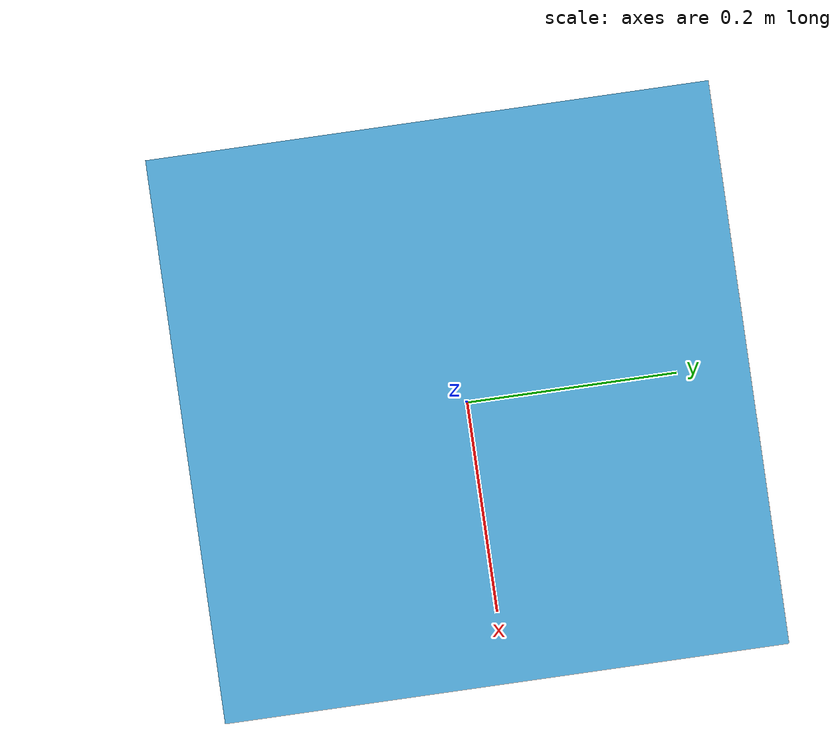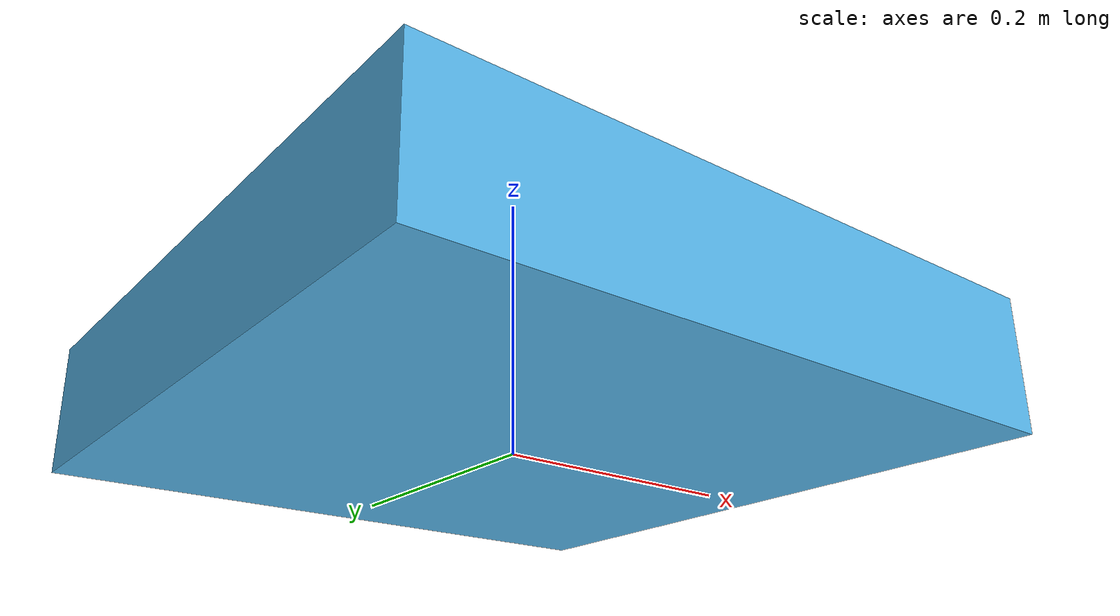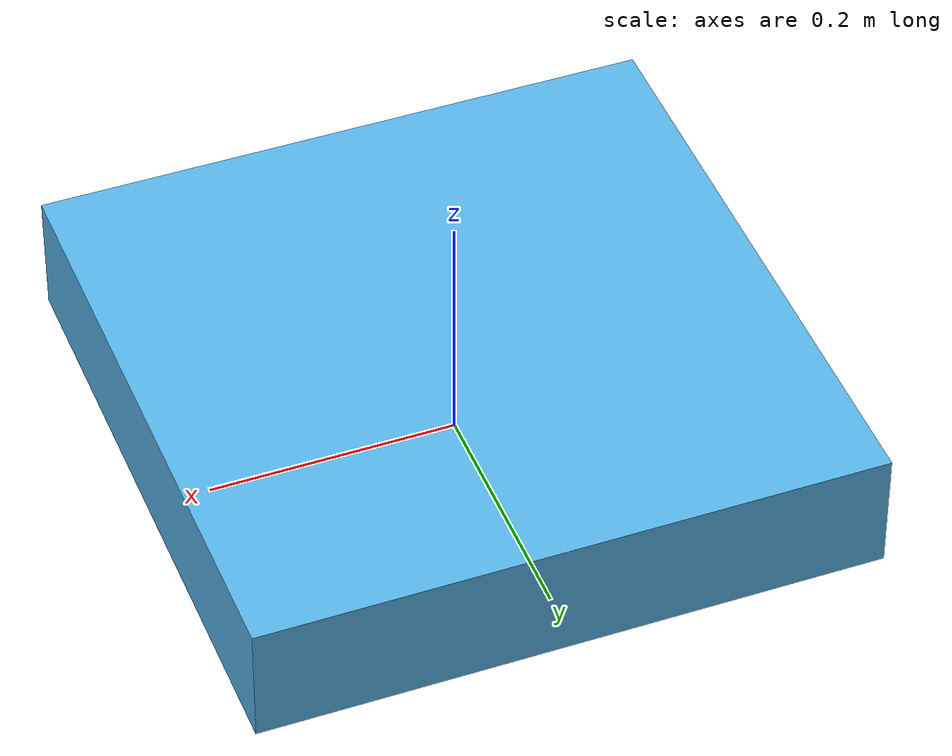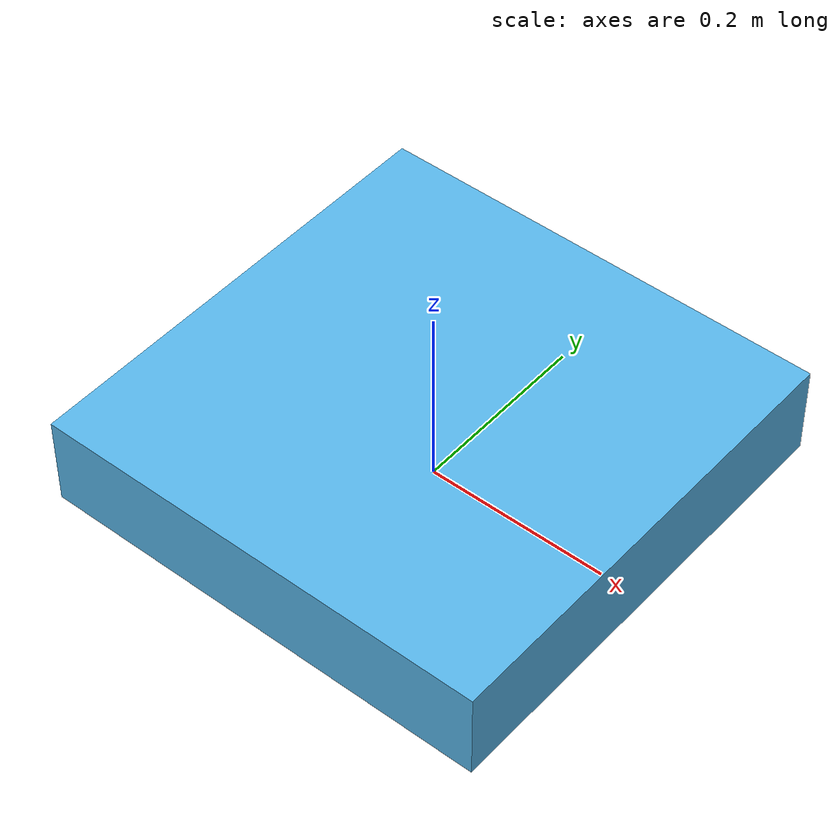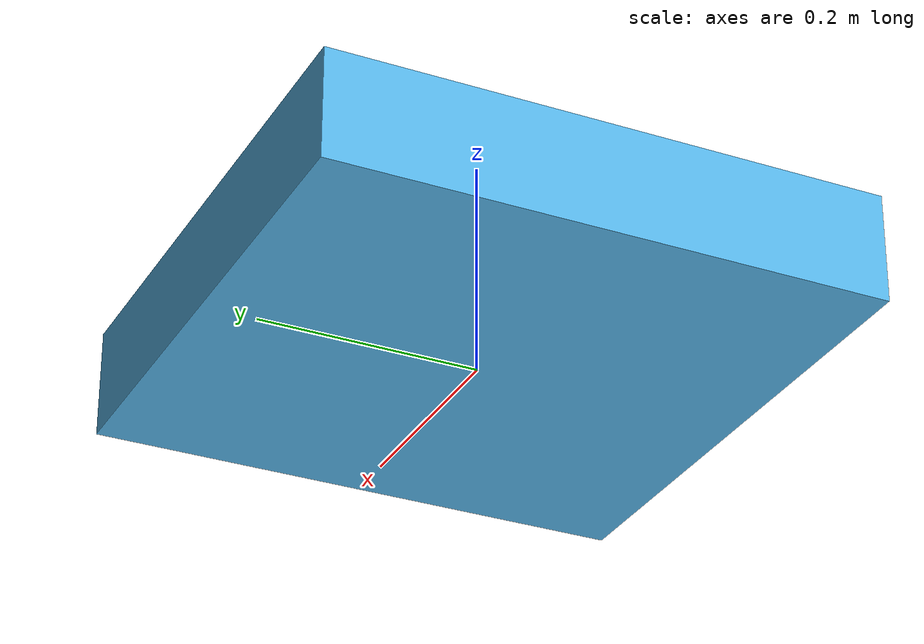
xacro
<?xml version="1.0"?>
<robot xmlns:xacro="http://www.ros.org/wiki/xacro" name="test_sonar">

  <xacro:property name="M_PI" value="3.14159"/>
    <xacro:arg name="robot_namespace" default="/" />

  <!-- Base Footprint -->
  <link name="base_footprint" />

  <!-- Base Link-->
  <joint name="footprint" type="fixed" >
   <parent link="base_footprint" />
    <child link="base_link" />
    <origin xyz="0 0 0.05" rpy="0 0 0" />
  </joint>

  <link name="base_link" >
    <visual>
      <geometry>
        <box size="0.5 0.5 0.1" />
      </geometry>
    </visual>
    <collision>
      <geometry>
        <box size="0.5 0.5 0.1" />
      </geometry>
    </collision>
    <inertial>
      <origin xyz="0 0 0"/>
      <mass value="10"/>
      <inertia ixx="3.0" ixy="0.0" ixz="0.0"
               iyy="3.0" iyz="0.0"
               izz="3.0" />
    </inertial>
  </link>

  <!-- UM6-IMU -->
  <xacro:include filename="$(find gazebo_robot)/sensors/sonar/urdf/sonar.xacro"/>
  <xacro:sonar parent="base_link" pos="m1" xyz="0 0 0 " rpy="0 1.57 0" />

</robot>

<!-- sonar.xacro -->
<robot name="sonar" xmlns:xacro="http://ros.org/wiki/xacro">
  <xacro:property name="sonar_radius" value="0.01"/>
  <xacro:property name="sonar_height" value="0.01"/>

  <xacro:macro name="sonar" params="parent pos xyz rpy">

    <link name="${pos}_sonar">
      <visual>
        <origin xyz="0 0 0" rpy="0 1.57 0"/>
        <geometry>
          <cylinder length="${sonar_height}" radius="${sonar_radius}"/>
        </geometry>
      </visual>
      <collision>
        <origin xyz="0 0 0" rpy="0 0 0"/>
        <geometry>
          <cylinder length="${sonar_height}" radius="${sonar_radius}"/>
        </geometry>
      </collision>
    </link>

    <joint name="${pos}_sonar_joint" type="fixed">
        <origin xyz="${xyz}" rpy="${rpy}"/>
        <parent link="${parent}"/>
        <child link="${pos}_sonar"/>
    </joint>

    <gazebo reference="${pos}_sonar">
      <sensor type="ray" name="sonar">
        <pose>0 0 0 0 0 0</pose>
        <visualize>false</visualize>
        <update_rate>50</update_rate>
        <ray>
          <scan>
            <horizontal>
              <samples>10</samples>
              <resolution>1</resolution>
              <min_angle>-0.785</min_angle>
              <max_angle>0.785</max_angle>
            </horizontal>
            <vertical>
              <samples>10</samples>
              <resolution>1</resolution>
              <min_angle>-0.25</min_angle>
              <max_angle>0.25</max_angle>
            </vertical>
          </scan>
          <range>
            <min>0.15</min>
            <max>0.5</max>
            <resolution>0.02</resolution>
          </range>
        </ray>
        <plugin filename="libgazebo_ros_range.so" name="gazebo_ros_range">
          <gaussianNoise>0.005</gaussianNoise>
          <alwaysOn>true</alwaysOn>
          <updateRate>50</updateRate>
          <topicName>${pos}_sonar</topicName>
          <frameName>${pos}_sonar</frameName>
          <radiation>ultrasound</radiation>
          <fov>0.5</fov>
        </plugin>
      </sensor>
    </gazebo>
  </xacro:macro>
</robot>
